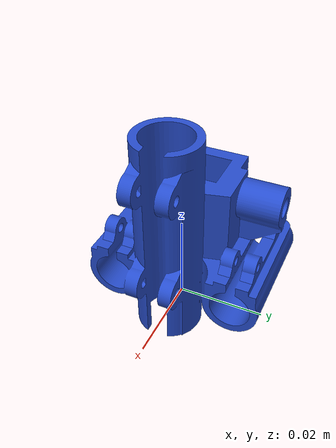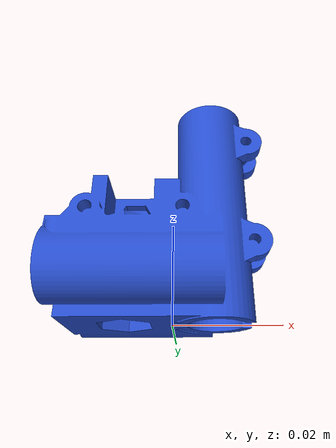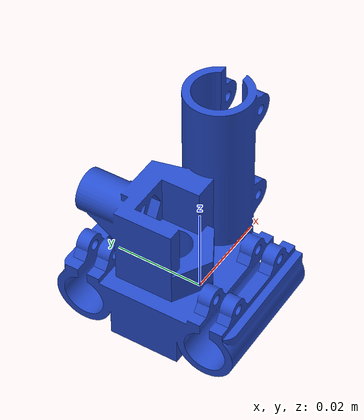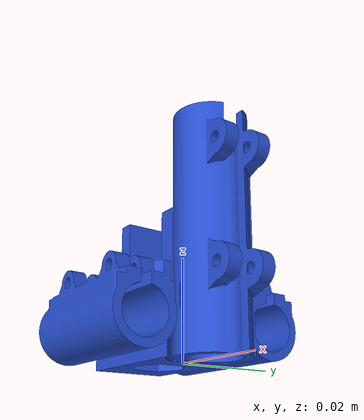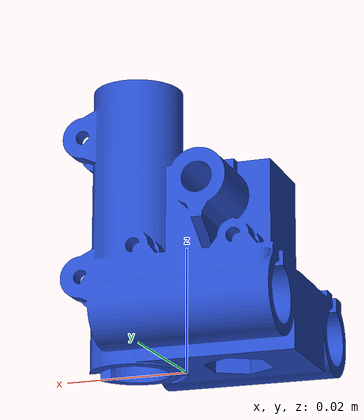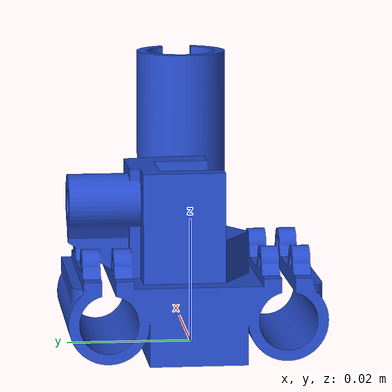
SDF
<?xml version="1.0" ?>
<sdf version="1.5">
  <model name="part_3">
    <static>false</static>
    <link name="part_3_link">
      <self_collide>true</self_collide>

      <collision name="collision">
        <geometry>
          <mesh>
            <uri>model://mahler_obj/part_3/meshes/part_3.dae</uri>
            <scale>0.6 0.6 0.6</scale>
          </mesh>
        </geometry>
      </collision>

      <visual name="visual">
        <geometry>
          <mesh>
            <uri>model://mahler_obj/part_3/meshes/part_3.dae</uri>
            <scale>0.6 0.6 0.6</scale>
          </mesh>
        </geometry>
        <material>
          <script>
            <uri>file://media/materials/scripts/gazebo.material</uri>
            <name>Gazebo/Blue</name>
          </script>
        </material>
      </visual>
    </link>

  </model>
</sdf>
